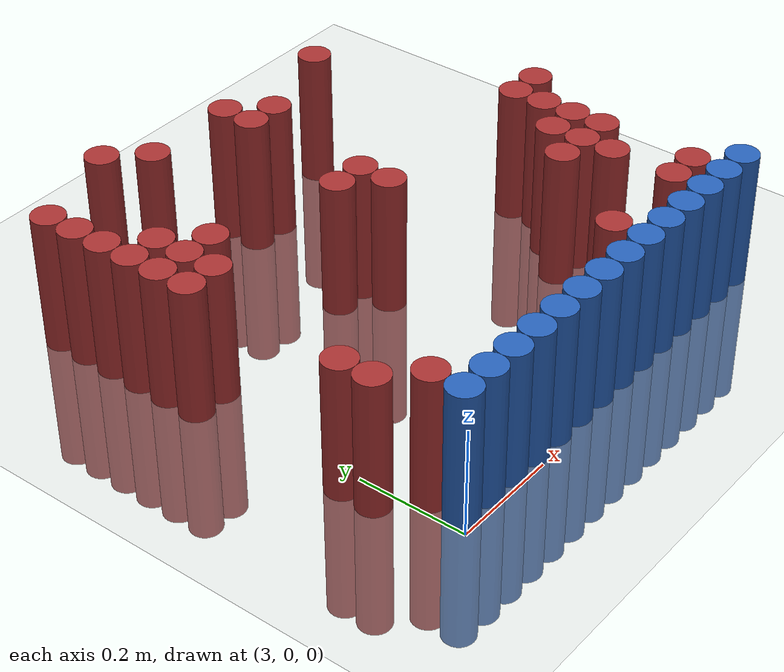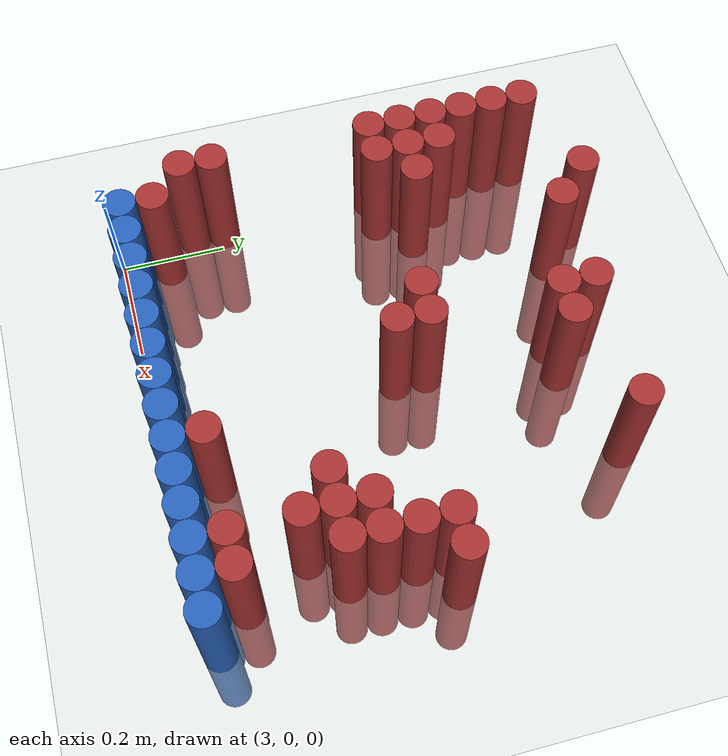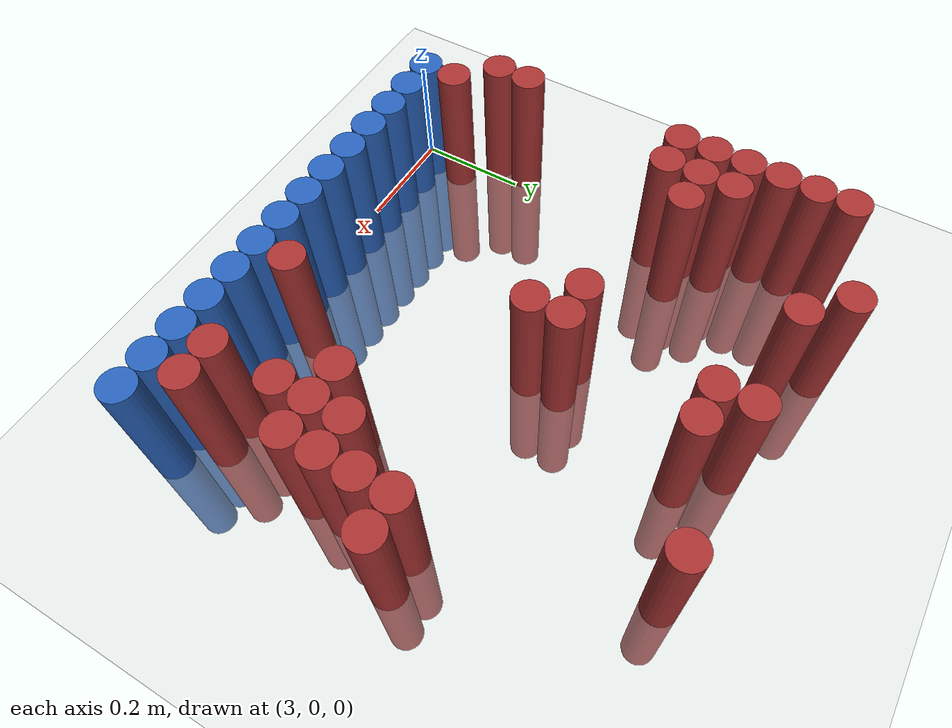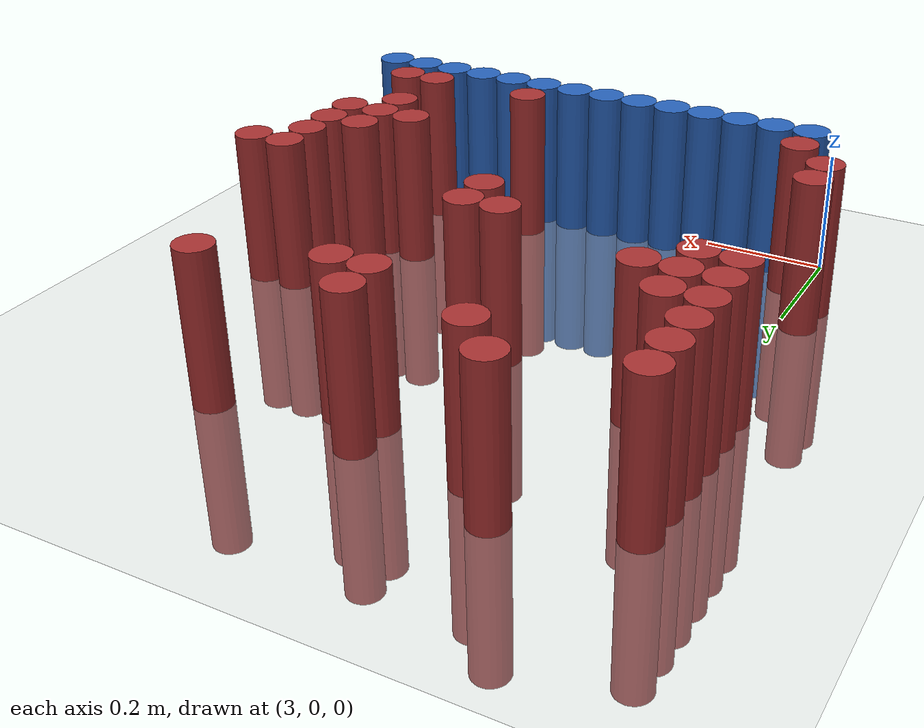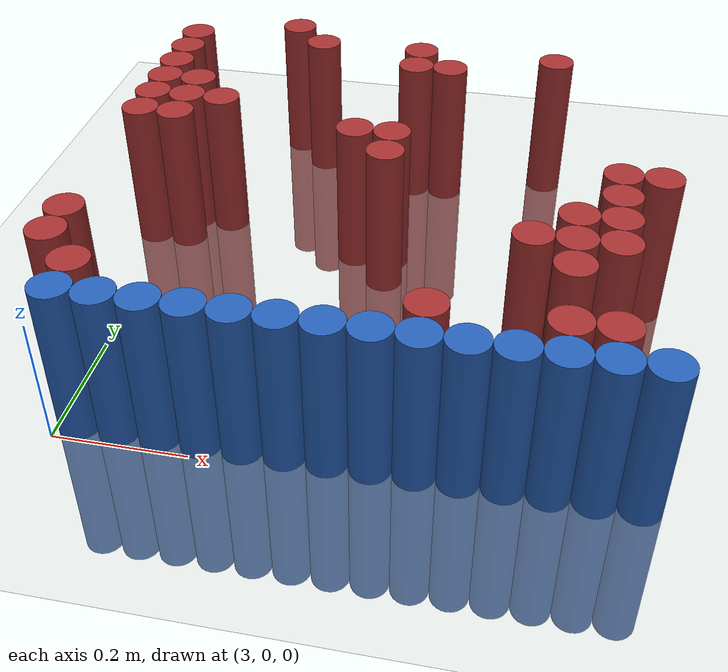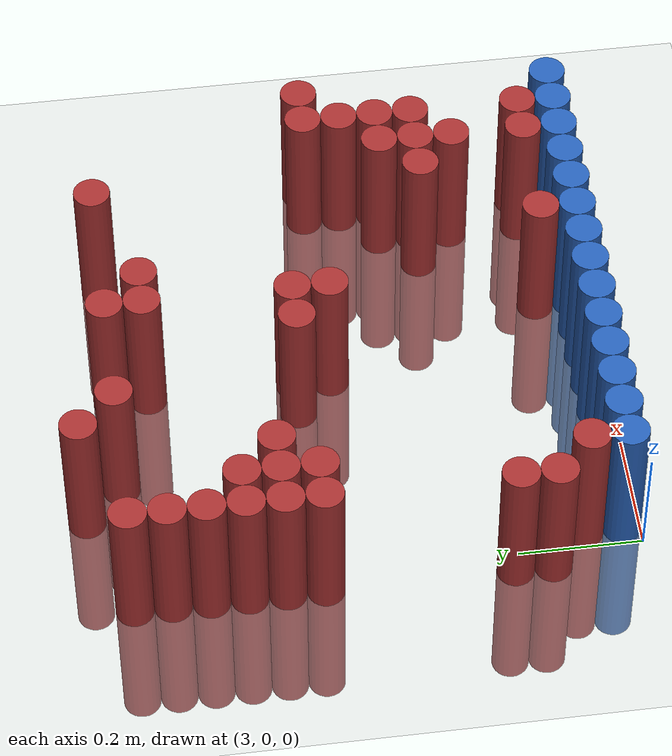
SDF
<sdf version="1.6">
 <world name="default">
  <model name="ground_plane">
   <static>1</static>
   <link name="link">
    <collision name="collision">
     <geometry><plane><normal>0 0 1</normal><size>100 100</size></plane></geometry>
     <surface><friction><ode><mu>100</mu><mu2>50</mu2></ode></friction></surface>
    </collision>
    <visual name="visual">
     <cast_shadows>0</cast_shadows>
     <geometry><plane><normal>0 0 1</normal><size>100 100</size></plane></geometry>
     <material>
      <script><uri>file://media/materials/scripts/gazebo.material</uri><name>Gazebo/Grey</name></script>
     </material>
    </visual>
   </link>
  </model>
  <model name="unit_cylinder_221">
   <static>1</static>
   <pose>3.150000 0.870000 0.000000 0.000000 0.000000 0.000000</pose>
   <link name="link">
    <inertial>
     <mass>1</mass>
     <inertia><ixx>0.145833</ixx><ixy>0</ixy><ixz>0</ixz><iyy>0.145833</iyy><iyz>0</iyz><izz>0.125</izz></inertia>
    </inertial>
    <collision name="collision">
     <geometry><cylinder><radius>0.030000</radius><length>0.5</length></cylinder></geometry>
    </collision>
    <visual name="visual">
     <geometry><cylinder><radius>0.030000</radius><length>0.5</length></cylinder></geometry>
     <material>
      <ambient>0.648000 0.192000 0.192000 1</ambient>
      <diffuse>0.648000 0.192000 0.192000 1</diffuse>
     </material>
     <material>
      <script><name>Gazebo/Grey</name><uri>file://media/materials/scripts/gazebo.material</uri></script>
     </material>
    </visual>
   </link>
  </model>
  <model name="unit_cylinder_235">
   <static>1</static>
   <pose>2.970000 0.810000 0.000000 0.000000 0.000000 0.000000</pose>
   <link name="link">
    <inertial>
     <mass>1</mass>
     <inertia><ixx>0.145833</ixx><ixy>0</ixy><ixz>0</ixz><iyy>0.145833</iyy><iyz>0</iyz><izz>0.125</izz></inertia>
    </inertial>
    <collision name="collision">
     <geometry><cylinder><radius>0.030000</radius><length>0.5</length></cylinder></geometry>
    </collision>
    <visual name="visual">
     <geometry><cylinder><radius>0.030000</radius><length>0.5</length></cylinder></geometry>
     <material>
      <ambient>0.648000 0.192000 0.192000 1</ambient>
      <diffuse>0.648000 0.192000 0.192000 1</diffuse>
     </material>
     <material>
      <script><name>Gazebo/Grey</name><uri>file://media/materials/scripts/gazebo.material</uri></script>
     </material>
    </visual>
   </link>
  </model>
  <model name="unit_cylinder_236">
   <static>1</static>
   <pose>3.210000 0.810000 0.000000 0.000000 0.000000 0.000000</pose>
   <link name="link">
    <inertial>
     <mass>1</mass>
     <inertia><ixx>0.145833</ixx><ixy>0</ixy><ixz>0</ixz><iyy>0.145833</iyy><iyz>0</iyz><izz>0.125</izz></inertia>
    </inertial>
    <collision name="collision">
     <geometry><cylinder><radius>0.030000</radius><length>0.5</length></cylinder></geometry>
    </collision>
    <visual name="visual">
     <geometry><cylinder><radius>0.030000</radius><length>0.5</length></cylinder></geometry>
     <material>
      <ambient>0.648000 0.192000 0.192000 1</ambient>
      <diffuse>0.648000 0.192000 0.192000 1</diffuse>
     </material>
     <material>
      <script><name>Gazebo/Grey</name><uri>file://media/materials/scripts/gazebo.material</uri></script>
     </material>
    </visual>
   </link>
  </model>
  <model name="unit_cylinder_237">
   <static>1</static>
   <pose>3.390000 0.810000 0.000000 0.000000 0.000000 0.000000</pose>
   <link name="link">
    <inertial>
     <mass>1</mass>
     <inertia><ixx>0.145833</ixx><ixy>0</ixy><ixz>0</ixz><iyy>0.145833</iyy><iyz>0</iyz><izz>0.125</izz></inertia>
    </inertial>
    <collision name="collision">
     <geometry><cylinder><radius>0.030000</radius><length>0.5</length></cylinder></geometry>
    </collision>
    <visual name="visual">
     <geometry><cylinder><radius>0.030000</radius><length>0.5</length></cylinder></geometry>
     <material>
      <ambient>0.648000 0.192000 0.192000 1</ambient>
      <diffuse>0.648000 0.192000 0.192000 1</diffuse>
     </material>
     <material>
      <script><name>Gazebo/Grey</name><uri>file://media/materials/scripts/gazebo.material</uri></script>
     </material>
    </visual>
   </link>
  </model>
  <model name="unit_cylinder_238">
   <static>1</static>
   <pose>3.630000 0.810000 0.000000 0.000000 0.000000 0.000000</pose>
   <link name="link">
    <inertial>
     <mass>1</mass>
     <inertia><ixx>0.145833</ixx><ixy>0</ixy><ixz>0</ixz><iyy>0.145833</iyy><iyz>0</iyz><izz>0.125</izz></inertia>
    </inertial>
    <collision name="collision">
     <geometry><cylinder><radius>0.030000</radius><length>0.5</length></cylinder></geometry>
    </collision>
    <visual name="visual">
     <geometry><cylinder><radius>0.030000</radius><length>0.5</length></cylinder></geometry>
     <material>
      <ambient>0.648000 0.192000 0.192000 1</ambient>
      <diffuse>0.648000 0.192000 0.192000 1</diffuse>
     </material>
     <material>
      <script><name>Gazebo/Grey</name><uri>file://media/materials/scripts/gazebo.material</uri></script>
     </material>
    </visual>
   </link>
  </model>
  <model name="unit_cylinder_241">
   <static>1</static>
   <pose>2.970000 0.750000 0.000000 0.000000 0.000000 0.000000</pose>
   <link name="link">
    <inertial>
     <mass>1</mass>
     <inertia><ixx>0.145833</ixx><ixy>0</ixy><ixz>0</ixz><iyy>0.145833</iyy><iyz>0</iyz><izz>0.125</izz></inertia>
    </inertial>
    <collision name="collision">
     <geometry><cylinder><radius>0.030000</radius><length>0.5</length></cylinder></geometry>
    </collision>
    <visual name="visual">
     <geometry><cylinder><radius>0.030000</radius><length>0.5</length></cylinder></geometry>
     <material>
      <ambient>0.648000 0.192000 0.192000 1</ambient>
      <diffuse>0.648000 0.192000 0.192000 1</diffuse>
     </material>
     <material>
      <script><name>Gazebo/Grey</name><uri>file://media/materials/scripts/gazebo.material</uri></script>
     </material>
    </visual>
   </link>
  </model>
  <model name="unit_cylinder_242">
   <static>1</static>
   <pose>3.390000 0.750000 0.000000 0.000000 0.000000 0.000000</pose>
   <link name="link">
    <inertial>
     <mass>1</mass>
     <inertia><ixx>0.145833</ixx><ixy>0</ixy><ixz>0</ixz><iyy>0.145833</iyy><iyz>0</iyz><izz>0.125</izz></inertia>
    </inertial>
    <collision name="collision">
     <geometry><cylinder><radius>0.030000</radius><length>0.5</length></cylinder></geometry>
    </collision>
    <visual name="visual">
     <geometry><cylinder><radius>0.030000</radius><length>0.5</length></cylinder></geometry>
     <material>
      <ambient>0.648000 0.192000 0.192000 1</ambient>
      <diffuse>0.648000 0.192000 0.192000 1</diffuse>
     </material>
     <material>
      <script><name>Gazebo/Grey</name><uri>file://media/materials/scripts/gazebo.material</uri></script>
     </material>
    </visual>
   </link>
  </model>
  <model name="unit_cylinder_243">
   <static>1</static>
   <pose>3.450000 0.750000 0.000000 0.000000 0.000000 0.000000</pose>
   <link name="link">
    <inertial>
     <mass>1</mass>
     <inertia><ixx>0.145833</ixx><ixy>0</ixy><ixz>0</ixz><iyy>0.145833</iyy><iyz>0</iyz><izz>0.125</izz></inertia>
    </inertial>
    <collision name="collision">
     <geometry><cylinder><radius>0.030000</radius><length>0.5</length></cylinder></geometry>
    </collision>
    <visual name="visual">
     <geometry><cylinder><radius>0.030000</radius><length>0.5</length></cylinder></geometry>
     <material>
      <ambient>0.648000 0.192000 0.192000 1</ambient>
      <diffuse>0.648000 0.192000 0.192000 1</diffuse>
     </material>
     <material>
      <script><name>Gazebo/Grey</name><uri>file://media/materials/scripts/gazebo.material</uri></script>
     </material>
    </visual>
   </link>
  </model>
  <model name="unit_cylinder_245">
   <static>1</static>
   <pose>2.970000 0.690000 0.000000 0.000000 0.000000 0.000000</pose>
   <link name="link">
    <inertial>
     <mass>1</mass>
     <inertia><ixx>0.145833</ixx><ixy>0</ixy><ixz>0</ixz><iyy>0.145833</iyy><iyz>0</iyz><izz>0.125</izz></inertia>
    </inertial>
    <collision name="collision">
     <geometry><cylinder><radius>0.030000</radius><length>0.5</length></cylinder></geometry>
    </collision>
    <visual name="visual">
     <geometry><cylinder><radius>0.030000</radius><length>0.5</length></cylinder></geometry>
     <material>
      <ambient>0.648000 0.192000 0.192000 1</ambient>
      <diffuse>0.648000 0.192000 0.192000 1</diffuse>
     </material>
     <material>
      <script><name>Gazebo/Grey</name><uri>file://media/materials/scripts/gazebo.material</uri></script>
     </material>
    </visual>
   </link>
  </model>
  <model name="unit_cylinder_248">
   <static>1</static>
   <pose>2.970000 0.630000 0.000000 0.000000 0.000000 0.000000</pose>
   <link name="link">
    <inertial>
     <mass>1</mass>
     <inertia><ixx>0.145833</ixx><ixy>0</ixy><ixz>0</ixz><iyy>0.145833</iyy><iyz>0</iyz><izz>0.125</izz></inertia>
    </inertial>
    <collision name="collision">
     <geometry><cylinder><radius>0.030000</radius><length>0.5</length></cylinder></geometry>
    </collision>
    <visual name="visual">
     <geometry><cylinder><radius>0.030000</radius><length>0.5</length></cylinder></geometry>
     <material>
      <ambient>0.648000 0.192000 0.192000 1</ambient>
      <diffuse>0.648000 0.192000 0.192000 1</diffuse>
     </material>
     <material>
      <script><name>Gazebo/Grey</name><uri>file://media/materials/scripts/gazebo.material</uri></script>
     </material>
    </visual>
   </link>
  </model>
  <model name="unit_cylinder_249">
   <static>1</static>
   <pose>3.030000 0.630000 0.000000 0.000000 0.000000 0.000000</pose>
   <link name="link">
    <inertial>
     <mass>1</mass>
     <inertia><ixx>0.145833</ixx><ixy>0</ixy><ixz>0</ixz><iyy>0.145833</iyy><iyz>0</iyz><izz>0.125</izz></inertia>
    </inertial>
    <collision name="collision">
     <geometry><cylinder><radius>0.030000</radius><length>0.5</length></cylinder></geometry>
    </collision>
    <visual name="visual">
     <geometry><cylinder><radius>0.030000</radius><length>0.5</length></cylinder></geometry>
     <material>
      <ambient>0.648000 0.192000 0.192000 1</ambient>
      <diffuse>0.648000 0.192000 0.192000 1</diffuse>
     </material>
     <material>
      <script><name>Gazebo/Grey</name><uri>file://media/materials/scripts/gazebo.material</uri></script>
     </material>
    </visual>
   </link>
  </model>
  <model name="unit_cylinder_256">
   <static>1</static>
   <pose>2.970000 0.570000 0.000000 0.000000 0.000000 0.000000</pose>
   <link name="link">
    <inertial>
     <mass>1</mass>
     <inertia><ixx>0.145833</ixx><ixy>0</ixy><ixz>0</ixz><iyy>0.145833</iyy><iyz>0</iyz><izz>0.125</izz></inertia>
    </inertial>
    <collision name="collision">
     <geometry><cylinder><radius>0.030000</radius><length>0.5</length></cylinder></geometry>
    </collision>
    <visual name="visual">
     <geometry><cylinder><radius>0.030000</radius><length>0.5</length></cylinder></geometry>
     <material>
      <ambient>0.648000 0.192000 0.192000 1</ambient>
      <diffuse>0.648000 0.192000 0.192000 1</diffuse>
     </material>
     <material>
      <script><name>Gazebo/Grey</name><uri>file://media/materials/scripts/gazebo.material</uri></script>
     </material>
    </visual>
   </link>
  </model>
  <model name="unit_cylinder_257">
   <static>1</static>
   <pose>3.030000 0.570000 0.000000 0.000000 0.000000 0.000000</pose>
   <link name="link">
    <inertial>
     <mass>1</mass>
     <inertia><ixx>0.145833</ixx><ixy>0</ixy><ixz>0</ixz><iyy>0.145833</iyy><iyz>0</iyz><izz>0.125</izz></inertia>
    </inertial>
    <collision name="collision">
     <geometry><cylinder><radius>0.030000</radius><length>0.5</length></cylinder></geometry>
    </collision>
    <visual name="visual">
     <geometry><cylinder><radius>0.030000</radius><length>0.5</length></cylinder></geometry>
     <material>
      <ambient>0.648000 0.192000 0.192000 1</ambient>
      <diffuse>0.648000 0.192000 0.192000 1</diffuse>
     </material>
     <material>
      <script><name>Gazebo/Grey</name><uri>file://media/materials/scripts/gazebo.material</uri></script>
     </material>
    </visual>
   </link>
  </model>
  <model name="unit_cylinder_258">
   <static>1</static>
   <pose>3.090000 0.570000 0.000000 0.000000 0.000000 0.000000</pose>
   <link name="link">
    <inertial>
     <mass>1</mass>
     <inertia><ixx>0.145833</ixx><ixy>0</ixy><ixz>0</ixz><iyy>0.145833</iyy><iyz>0</iyz><izz>0.125</izz></inertia>
    </inertial>
    <collision name="collision">
     <geometry><cylinder><radius>0.030000</radius><length>0.5</length></cylinder></geometry>
    </collision>
    <visual name="visual">
     <geometry><cylinder><radius>0.030000</radius><length>0.5</length></cylinder></geometry>
     <material>
      <ambient>0.648000 0.192000 0.192000 1</ambient>
      <diffuse>0.648000 0.192000 0.192000 1</diffuse>
     </material>
     <material>
      <script><name>Gazebo/Grey</name><uri>file://media/materials/scripts/gazebo.material</uri></script>
     </material>
    </visual>
   </link>
  </model>
  <model name="unit_cylinder_262">
   <static>1</static>
   <pose>2.970000 0.510000 0.000000 0.000000 0.000000 0.000000</pose>
   <link name="link">
    <inertial>
     <mass>1</mass>
     <inertia><ixx>0.145833</ixx><ixy>0</ixy><ixz>0</ixz><iyy>0.145833</iyy><iyz>0</iyz><izz>0.125</izz></inertia>
    </inertial>
    <collision name="collision">
     <geometry><cylinder><radius>0.030000</radius><length>0.5</length></cylinder></geometry>
    </collision>
    <visual name="visual">
     <geometry><cylinder><radius>0.030000</radius><length>0.5</length></cylinder></geometry>
     <material>
      <ambient>0.648000 0.192000 0.192000 1</ambient>
      <diffuse>0.648000 0.192000 0.192000 1</diffuse>
     </material>
     <material>
      <script><name>Gazebo/Grey</name><uri>file://media/materials/scripts/gazebo.material</uri></script>
     </material>
    </visual>
   </link>
  </model>
  <model name="unit_cylinder_263">
   <static>1</static>
   <pose>3.030000 0.510000 0.000000 0.000000 0.000000 0.000000</pose>
   <link name="link">
    <inertial>
     <mass>1</mass>
     <inertia><ixx>0.145833</ixx><ixy>0</ixy><ixz>0</ixz><iyy>0.145833</iyy><iyz>0</iyz><izz>0.125</izz></inertia>
    </inertial>
    <collision name="collision">
     <geometry><cylinder><radius>0.030000</radius><length>0.5</length></cylinder></geometry>
    </collision>
    <visual name="visual">
     <geometry><cylinder><radius>0.030000</radius><length>0.5</length></cylinder></geometry>
     <material>
      <ambient>0.648000 0.192000 0.192000 1</ambient>
      <diffuse>0.648000 0.192000 0.192000 1</diffuse>
     </material>
     <material>
      <script><name>Gazebo/Grey</name><uri>file://media/materials/scripts/gazebo.material</uri></script>
     </material>
    </visual>
   </link>
  </model>
  <model name="unit_cylinder_264">
   <static>1</static>
   <pose>3.330000 0.510000 0.000000 0.000000 0.000000 0.000000</pose>
   <link name="link">
    <inertial>
     <mass>1</mass>
     <inertia><ixx>0.145833</ixx><ixy>0</ixy><ixz>0</ixz><iyy>0.145833</iyy><iyz>0</iyz><izz>0.125</izz></inertia>
    </inertial>
    <collision name="collision">
     <geometry><cylinder><radius>0.030000</radius><length>0.5</length></cylinder></geometry>
    </collision>
    <visual name="visual">
     <geometry><cylinder><radius>0.030000</radius><length>0.5</length></cylinder></geometry>
     <material>
      <ambient>0.648000 0.192000 0.192000 1</ambient>
      <diffuse>0.648000 0.192000 0.192000 1</diffuse>
     </material>
     <material>
      <script><name>Gazebo/Grey</name><uri>file://media/materials/scripts/gazebo.material</uri></script>
     </material>
    </visual>
   </link>
  </model>
  <model name="unit_cylinder_265">
   <static>1</static>
   <pose>3.390000 0.510000 0.000000 0.000000 0.000000 0.000000</pose>
   <link name="link">
    <inertial>
     <mass>1</mass>
     <inertia><ixx>0.145833</ixx><ixy>0</ixy><ixz>0</ixz><iyy>0.145833</iyy><iyz>0</iyz><izz>0.125</izz></inertia>
    </inertial>
    <collision name="collision">
     <geometry><cylinder><radius>0.030000</radius><length>0.5</length></cylinder></geometry>
    </collision>
    <visual name="visual">
     <geometry><cylinder><radius>0.030000</radius><length>0.5</length></cylinder></geometry>
     <material>
      <ambient>0.648000 0.192000 0.192000 1</ambient>
      <diffuse>0.648000 0.192000 0.192000 1</diffuse>
     </material>
     <material>
      <script><name>Gazebo/Grey</name><uri>file://media/materials/scripts/gazebo.material</uri></script>
     </material>
    </visual>
   </link>
  </model>
  <model name="unit_cylinder_267">
   <static>1</static>
   <pose>3.390000 0.450000 0.000000 0.000000 0.000000 0.000000</pose>
   <link name="link">
    <inertial>
     <mass>1</mass>
     <inertia><ixx>0.145833</ixx><ixy>0</ixy><ixz>0</ixz><iyy>0.145833</iyy><iyz>0</iyz><izz>0.125</izz></inertia>
    </inertial>
    <collision name="collision">
     <geometry><cylinder><radius>0.030000</radius><length>0.5</length></cylinder></geometry>
    </collision>
    <visual name="visual">
     <geometry><cylinder><radius>0.030000</radius><length>0.5</length></cylinder></geometry>
     <material>
      <ambient>0.648000 0.192000 0.192000 1</ambient>
      <diffuse>0.648000 0.192000 0.192000 1</diffuse>
     </material>
     <material>
      <script><name>Gazebo/Grey</name><uri>file://media/materials/scripts/gazebo.material</uri></script>
     </material>
    </visual>
   </link>
  </model>
  <model name="unit_cylinder_268">
   <static>1</static>
   <pose>3.750000 0.450000 0.000000 0.000000 0.000000 0.000000</pose>
   <link name="link">
    <inertial>
     <mass>1</mass>
     <inertia><ixx>0.145833</ixx><ixy>0</ixy><ixz>0</ixz><iyy>0.145833</iyy><iyz>0</iyz><izz>0.125</izz></inertia>
    </inertial>
    <collision name="collision">
     <geometry><cylinder><radius>0.030000</radius><length>0.5</length></cylinder></geometry>
    </collision>
    <visual name="visual">
     <geometry><cylinder><radius>0.030000</radius><length>0.5</length></cylinder></geometry>
     <material>
      <ambient>0.648000 0.192000 0.192000 1</ambient>
      <diffuse>0.648000 0.192000 0.192000 1</diffuse>
     </material>
     <material>
      <script><name>Gazebo/Grey</name><uri>file://media/materials/scripts/gazebo.material</uri></script>
     </material>
    </visual>
   </link>
  </model>
  <model name="unit_cylinder_269">
   <static>1</static>
   <pose>3.810000 0.450000 0.000000 0.000000 0.000000 0.000000</pose>
   <link name="link">
    <inertial>
     <mass>1</mass>
     <inertia><ixx>0.145833</ixx><ixy>0</ixy><ixz>0</ixz><iyy>0.145833</iyy><iyz>0</iyz><izz>0.125</izz></inertia>
    </inertial>
    <collision name="collision">
     <geometry><cylinder><radius>0.030000</radius><length>0.5</length></cylinder></geometry>
    </collision>
    <visual name="visual">
     <geometry><cylinder><radius>0.030000</radius><length>0.5</length></cylinder></geometry>
     <material>
      <ambient>0.648000 0.192000 0.192000 1</ambient>
      <diffuse>0.648000 0.192000 0.192000 1</diffuse>
     </material>
     <material>
      <script><name>Gazebo/Grey</name><uri>file://media/materials/scripts/gazebo.material</uri></script>
     </material>
    </visual>
   </link>
  </model>
  <model name="unit_cylinder_272">
   <static>1</static>
   <pose>3.750000 0.390000 0.000000 0.000000 0.000000 0.000000</pose>
   <link name="link">
    <inertial>
     <mass>1</mass>
     <inertia><ixx>0.145833</ixx><ixy>0</ixy><ixz>0</ixz><iyy>0.145833</iyy><iyz>0</iyz><izz>0.125</izz></inertia>
    </inertial>
    <collision name="collision">
     <geometry><cylinder><radius>0.030000</radius><length>0.5</length></cylinder></geometry>
    </collision>
    <visual name="visual">
     <geometry><cylinder><radius>0.030000</radius><length>0.5</length></cylinder></geometry>
     <material>
      <ambient>0.648000 0.192000 0.192000 1</ambient>
      <diffuse>0.648000 0.192000 0.192000 1</diffuse>
     </material>
     <material>
      <script><name>Gazebo/Grey</name><uri>file://media/materials/scripts/gazebo.material</uri></script>
     </material>
    </visual>
   </link>
  </model>
  <model name="unit_cylinder_275">
   <static>1</static>
   <pose>3.690000 0.330000 0.000000 0.000000 0.000000 0.000000</pose>
   <link name="link">
    <inertial>
     <mass>1</mass>
     <inertia><ixx>0.145833</ixx><ixy>0</ixy><ixz>0</ixz><iyy>0.145833</iyy><iyz>0</iyz><izz>0.125</izz></inertia>
    </inertial>
    <collision name="collision">
     <geometry><cylinder><radius>0.030000</radius><length>0.5</length></cylinder></geometry>
    </collision>
    <visual name="visual">
     <geometry><cylinder><radius>0.030000</radius><length>0.5</length></cylinder></geometry>
     <material>
      <ambient>0.648000 0.192000 0.192000 1</ambient>
      <diffuse>0.648000 0.192000 0.192000 1</diffuse>
     </material>
     <material>
      <script><name>Gazebo/Grey</name><uri>file://media/materials/scripts/gazebo.material</uri></script>
     </material>
    </visual>
   </link>
  </model>
  <model name="unit_cylinder_276">
   <static>1</static>
   <pose>3.750000 0.330000 0.000000 0.000000 0.000000 0.000000</pose>
   <link name="link">
    <inertial>
     <mass>1</mass>
     <inertia><ixx>0.145833</ixx><ixy>0</ixy><ixz>0</ixz><iyy>0.145833</iyy><iyz>0</iyz><izz>0.125</izz></inertia>
    </inertial>
    <collision name="collision">
     <geometry><cylinder><radius>0.030000</radius><length>0.5</length></cylinder></geometry>
    </collision>
    <visual name="visual">
     <geometry><cylinder><radius>0.030000</radius><length>0.5</length></cylinder></geometry>
     <material>
      <ambient>0.648000 0.192000 0.192000 1</ambient>
      <diffuse>0.648000 0.192000 0.192000 1</diffuse>
     </material>
     <material>
      <script><name>Gazebo/Grey</name><uri>file://media/materials/scripts/gazebo.material</uri></script>
     </material>
    </visual>
   </link>
  </model>
  <model name="unit_cylinder_278">
   <static>1</static>
   <pose>3.630000 0.270000 0.000000 0.000000 0.000000 0.000000</pose>
   <link name="link">
    <inertial>
     <mass>1</mass>
     <inertia><ixx>0.145833</ixx><ixy>0</ixy><ixz>0</ixz><iyy>0.145833</iyy><iyz>0</iyz><izz>0.125</izz></inertia>
    </inertial>
    <collision name="collision">
     <geometry><cylinder><radius>0.030000</radius><length>0.5</length></cylinder></geometry>
    </collision>
    <visual name="visual">
     <geometry><cylinder><radius>0.030000</radius><length>0.5</length></cylinder></geometry>
     <material>
      <ambient>0.648000 0.192000 0.192000 1</ambient>
      <diffuse>0.648000 0.192000 0.192000 1</diffuse>
     </material>
     <material>
      <script><name>Gazebo/Grey</name><uri>file://media/materials/scripts/gazebo.material</uri></script>
     </material>
    </visual>
   </link>
  </model>
  <model name="unit_cylinder_279">
   <static>1</static>
   <pose>3.690000 0.270000 0.000000 0.000000 0.000000 0.000000</pose>
   <link name="link">
    <inertial>
     <mass>1</mass>
     <inertia><ixx>0.145833</ixx><ixy>0</ixy><ixz>0</ixz><iyy>0.145833</iyy><iyz>0</iyz><izz>0.125</izz></inertia>
    </inertial>
    <collision name="collision">
     <geometry><cylinder><radius>0.030000</radius><length>0.5</length></cylinder></geometry>
    </collision>
    <visual name="visual">
     <geometry><cylinder><radius>0.030000</radius><length>0.5</length></cylinder></geometry>
     <material>
      <ambient>0.648000 0.192000 0.192000 1</ambient>
      <diffuse>0.648000 0.192000 0.192000 1</diffuse>
     </material>
     <material>
      <script><name>Gazebo/Grey</name><uri>file://media/materials/scripts/gazebo.material</uri></script>
     </material>
    </visual>
   </link>
  </model>
  <model name="unit_cylinder_280">
   <static>1</static>
   <pose>3.750000 0.270000 0.000000 0.000000 0.000000 0.000000</pose>
   <link name="link">
    <inertial>
     <mass>1</mass>
     <inertia><ixx>0.145833</ixx><ixy>0</ixy><ixz>0</ixz><iyy>0.145833</iyy><iyz>0</iyz><izz>0.125</izz></inertia>
    </inertial>
    <collision name="collision">
     <geometry><cylinder><radius>0.030000</radius><length>0.5</length></cylinder></geometry>
    </collision>
    <visual name="visual">
     <geometry><cylinder><radius>0.030000</radius><length>0.5</length></cylinder></geometry>
     <material>
      <ambient>0.648000 0.192000 0.192000 1</ambient>
      <diffuse>0.648000 0.192000 0.192000 1</diffuse>
     </material>
     <material>
      <script><name>Gazebo/Grey</name><uri>file://media/materials/scripts/gazebo.material</uri></script>
     </material>
    </visual>
   </link>
  </model>
  <model name="unit_cylinder_282">
   <static>1</static>
   <pose>2.970000 0.210000 0.000000 0.000000 0.000000 0.000000</pose>
   <link name="link">
    <inertial>
     <mass>1</mass>
     <inertia><ixx>0.145833</ixx><ixy>0</ixy><ixz>0</ixz><iyy>0.145833</iyy><iyz>0</iyz><izz>0.125</izz></inertia>
    </inertial>
    <collision name="collision">
     <geometry><cylinder><radius>0.030000</radius><length>0.5</length></cylinder></geometry>
    </collision>
    <visual name="visual">
     <geometry><cylinder><radius>0.030000</radius><length>0.5</length></cylinder></geometry>
     <material>
      <ambient>0.648000 0.192000 0.192000 1</ambient>
      <diffuse>0.648000 0.192000 0.192000 1</diffuse>
     </material>
     <material>
      <script><name>Gazebo/Grey</name><uri>file://media/materials/scripts/gazebo.material</uri></script>
     </material>
    </visual>
   </link>
  </model>
  <model name="unit_cylinder_283">
   <static>1</static>
   <pose>3.690000 0.210000 0.000000 0.000000 0.000000 0.000000</pose>
   <link name="link">
    <inertial>
     <mass>1</mass>
     <inertia><ixx>0.145833</ixx><ixy>0</ixy><ixz>0</ixz><iyy>0.145833</iyy><iyz>0</iyz><izz>0.125</izz></inertia>
    </inertial>
    <collision name="collision">
     <geometry><cylinder><radius>0.030000</radius><length>0.5</length></cylinder></geometry>
    </collision>
    <visual name="visual">
     <geometry><cylinder><radius>0.030000</radius><length>0.5</length></cylinder></geometry>
     <material>
      <ambient>0.648000 0.192000 0.192000 1</ambient>
      <diffuse>0.648000 0.192000 0.192000 1</diffuse>
     </material>
     <material>
      <script><name>Gazebo/Grey</name><uri>file://media/materials/scripts/gazebo.material</uri></script>
     </material>
    </visual>
   </link>
  </model>
  <model name="unit_cylinder_286">
   <static>1</static>
   <pose>2.970000 0.150000 0.000000 0.000000 0.000000 0.000000</pose>
   <link name="link">
    <inertial>
     <mass>1</mass>
     <inertia><ixx>0.145833</ixx><ixy>0</ixy><ixz>0</ixz><iyy>0.145833</iyy><iyz>0</iyz><izz>0.125</izz></inertia>
    </inertial>
    <collision name="collision">
     <geometry><cylinder><radius>0.030000</radius><length>0.5</length></cylinder></geometry>
    </collision>
    <visual name="visual">
     <geometry><cylinder><radius>0.030000</radius><length>0.5</length></cylinder></geometry>
     <material>
      <ambient>0.648000 0.192000 0.192000 1</ambient>
      <diffuse>0.648000 0.192000 0.192000 1</diffuse>
     </material>
     <material>
      <script><name>Gazebo/Grey</name><uri>file://media/materials/scripts/gazebo.material</uri></script>
     </material>
    </visual>
   </link>
  </model>
  <model name="unit_cylinder_299">
   <static>1</static>
   <pose>3.030000 0.090000 0.000000 0.000000 0.000000 0.000000</pose>
   <link name="link">
    <inertial>
     <mass>1</mass>
     <inertia><ixx>0.145833</ixx><ixy>0</ixy><ixz>0</ixz><iyy>0.145833</iyy><iyz>0</iyz><izz>0.125</izz></inertia>
    </inertial>
    <collision name="collision">
     <geometry><cylinder><radius>0.030000</radius><length>0.5</length></cylinder></geometry>
    </collision>
    <visual name="visual">
     <geometry><cylinder><radius>0.030000</radius><length>0.5</length></cylinder></geometry>
     <material>
      <ambient>0.648000 0.192000 0.192000 1</ambient>
      <diffuse>0.648000 0.192000 0.192000 1</diffuse>
     </material>
     <material>
      <script><name>Gazebo/Grey</name><uri>file://media/materials/scripts/gazebo.material</uri></script>
     </material>
    </visual>
   </link>
  </model>
  <model name="unit_cylinder_300">
   <static>1</static>
   <pose>3.510000 0.090000 0.000000 0.000000 0.000000 0.000000</pose>
   <link name="link">
    <inertial>
     <mass>1</mass>
     <inertia><ixx>0.145833</ixx><ixy>0</ixy><ixz>0</ixz><iyy>0.145833</iyy><iyz>0</iyz><izz>0.125</izz></inertia>
    </inertial>
    <collision name="collision">
     <geometry><cylinder><radius>0.030000</radius><length>0.5</length></cylinder></geometry>
    </collision>
    <visual name="visual">
     <geometry><cylinder><radius>0.030000</radius><length>0.5</length></cylinder></geometry>
     <material>
      <ambient>0.648000 0.192000 0.192000 1</ambient>
      <diffuse>0.648000 0.192000 0.192000 1</diffuse>
     </material>
     <material>
      <script><name>Gazebo/Grey</name><uri>file://media/materials/scripts/gazebo.material</uri></script>
     </material>
    </visual>
   </link>
  </model>
  <model name="unit_cylinder_301">
   <static>1</static>
   <pose>3.690000 0.090000 0.000000 0.000000 0.000000 0.000000</pose>
   <link name="link">
    <inertial>
     <mass>1</mass>
     <inertia><ixx>0.145833</ixx><ixy>0</ixy><ixz>0</ixz><iyy>0.145833</iyy><iyz>0</iyz><izz>0.125</izz></inertia>
    </inertial>
    <collision name="collision">
     <geometry><cylinder><radius>0.030000</radius><length>0.5</length></cylinder></geometry>
    </collision>
    <visual name="visual">
     <geometry><cylinder><radius>0.030000</radius><length>0.5</length></cylinder></geometry>
     <material>
      <ambient>0.648000 0.192000 0.192000 1</ambient>
      <diffuse>0.648000 0.192000 0.192000 1</diffuse>
     </material>
     <material>
      <script><name>Gazebo/Grey</name><uri>file://media/materials/scripts/gazebo.material</uri></script>
     </material>
    </visual>
   </link>
  </model>
  <model name="unit_cylinder_302">
   <static>1</static>
   <pose>3.750000 0.090000 0.000000 0.000000 0.000000 0.000000</pose>
   <link name="link">
    <inertial>
     <mass>1</mass>
     <inertia><ixx>0.145833</ixx><ixy>0</ixy><ixz>0</ixz><iyy>0.145833</iyy><iyz>0</iyz><izz>0.125</izz></inertia>
    </inertial>
    <collision name="collision">
     <geometry><cylinder><radius>0.030000</radius><length>0.5</length></cylinder></geometry>
    </collision>
    <visual name="visual">
     <geometry><cylinder><radius>0.030000</radius><length>0.5</length></cylinder></geometry>
     <material>
      <ambient>0.648000 0.192000 0.192000 1</ambient>
      <diffuse>0.648000 0.192000 0.192000 1</diffuse>
     </material>
     <material>
      <script><name>Gazebo/Grey</name><uri>file://media/materials/scripts/gazebo.material</uri></script>
     </material>
    </visual>
   </link>
  </model>
  <model name="unit_cylinder_319">
   <static>1</static>
   <pose>3.030000 0.030000 0.000000 0.000000 0.000000 0.000000</pose>
   <link name="link">
    <inertial>
     <mass>1</mass>
     <inertia><ixx>0.145833</ixx><ixy>0</ixy><ixz>0</ixz><iyy>0.145833</iyy><iyz>0</iyz><izz>0.125</izz></inertia>
    </inertial>
    <collision name="collision">
     <geometry><cylinder><radius>0.030000</radius><length>0.5</length></cylinder></geometry>
    </collision>
    <visual name="visual">
     <geometry><cylinder><radius>0.030000</radius><length>0.5</length></cylinder></geometry>
     <material>
      <ambient>0.152000 0.379000 0.720000 1</ambient>
      <diffuse>0.152000 0.379000 0.720000 1</diffuse>
     </material>
     <material>
      <script><name>Gazebo/Grey</name><uri>file://media/materials/scripts/gazebo.material</uri></script>
     </material>
    </visual>
   </link>
  </model>
  <model name="unit_cylinder_320">
   <static>1</static>
   <pose>3.090000 0.030000 0.000000 0.000000 0.000000 0.000000</pose>
   <link name="link">
    <inertial>
     <mass>1</mass>
     <inertia><ixx>0.145833</ixx><ixy>0</ixy><ixz>0</ixz><iyy>0.145833</iyy><iyz>0</iyz><izz>0.125</izz></inertia>
    </inertial>
    <collision name="collision">
     <geometry><cylinder><radius>0.030000</radius><length>0.5</length></cylinder></geometry>
    </collision>
    <visual name="visual">
     <geometry><cylinder><radius>0.030000</radius><length>0.5</length></cylinder></geometry>
     <material>
      <ambient>0.152000 0.379000 0.720000 1</ambient>
      <diffuse>0.152000 0.379000 0.720000 1</diffuse>
     </material>
     <material>
      <script><name>Gazebo/Grey</name><uri>file://media/materials/scripts/gazebo.material</uri></script>
     </material>
    </visual>
   </link>
  </model>
  <model name="unit_cylinder_321">
   <static>1</static>
   <pose>3.150000 0.030000 0.000000 0.000000 0.000000 0.000000</pose>
   <link name="link">
    <inertial>
     <mass>1</mass>
     <inertia><ixx>0.145833</ixx><ixy>0</ixy><ixz>0</ixz><iyy>0.145833</iyy><iyz>0</iyz><izz>0.125</izz></inertia>
    </inertial>
    <collision name="collision">
     <geometry><cylinder><radius>0.030000</radius><length>0.5</length></cylinder></geometry>
    </collision>
    <visual name="visual">
     <geometry><cylinder><radius>0.030000</radius><length>0.5</length></cylinder></geometry>
     <material>
      <ambient>0.152000 0.379000 0.720000 1</ambient>
      <diffuse>0.152000 0.379000 0.720000 1</diffuse>
     </material>
     <material>
      <script><name>Gazebo/Grey</name><uri>file://media/materials/scripts/gazebo.material</uri></script>
     </material>
    </visual>
   </link>
  </model>
  <model name="unit_cylinder_322">
   <static>1</static>
   <pose>3.210000 0.030000 0.000000 0.000000 0.000000 0.000000</pose>
   <link name="link">
    <inertial>
     <mass>1</mass>
     <inertia><ixx>0.145833</ixx><ixy>0</ixy><ixz>0</ixz><iyy>0.145833</iyy><iyz>0</iyz><izz>0.125</izz></inertia>
    </inertial>
    <collision name="collision">
     <geometry><cylinder><radius>0.030000</radius><length>0.5</length></cylinder></geometry>
    </collision>
    <visual name="visual">
     <geometry><cylinder><radius>0.030000</radius><length>0.5</length></cylinder></geometry>
     <material>
      <ambient>0.152000 0.379000 0.720000 1</ambient>
      <diffuse>0.152000 0.379000 0.720000 1</diffuse>
     </material>
     <material>
      <script><name>Gazebo/Grey</name><uri>file://media/materials/scripts/gazebo.material</uri></script>
     </material>
    </visual>
   </link>
  </model>
  <model name="unit_cylinder_323">
   <static>1</static>
   <pose>3.270000 0.030000 0.000000 0.000000 0.000000 0.000000</pose>
   <link name="link">
    <inertial>
     <mass>1</mass>
     <inertia><ixx>0.145833</ixx><ixy>0</ixy><ixz>0</ixz><iyy>0.145833</iyy><iyz>0</iyz><izz>0.125</izz></inertia>
    </inertial>
    <collision name="collision">
     <geometry><cylinder><radius>0.030000</radius><length>0.5</length></cylinder></geometry>
    </collision>
    <visual name="visual">
     <geometry><cylinder><radius>0.030000</radius><length>0.5</length></cylinder></geometry>
     <material>
      <ambient>0.152000 0.379000 0.720000 1</ambient>
      <diffuse>0.152000 0.379000 0.720000 1</diffuse>
     </material>
     <material>
      <script><name>Gazebo/Grey</name><uri>file://media/materials/scripts/gazebo.material</uri></script>
     </material>
    </visual>
   </link>
  </model>
  <model name="unit_cylinder_324">
   <static>1</static>
   <pose>3.330000 0.030000 0.000000 0.000000 0.000000 0.000000</pose>
   <link name="link">
    <inertial>
     <mass>1</mass>
     <inertia><ixx>0.145833</ixx><ixy>0</ixy><ixz>0</ixz><iyy>0.145833</iyy><iyz>0</iyz><izz>0.125</izz></inertia>
    </inertial>
    <collision name="collision">
     <geometry><cylinder><radius>0.030000</radius><length>0.5</length></cylinder></geometry>
    </collision>
    <visual name="visual">
     <geometry><cylinder><radius>0.030000</radius><length>0.5</length></cylinder></geometry>
     <material>
      <ambient>0.152000 0.379000 0.720000 1</ambient>
      <diffuse>0.152000 0.379000 0.720000 1</diffuse>
     </material>
     <material>
      <script><name>Gazebo/Grey</name><uri>file://media/materials/scripts/gazebo.material</uri></script>
     </material>
    </visual>
   </link>
  </model>
  <model name="unit_cylinder_325">
   <static>1</static>
   <pose>3.390000 0.030000 0.000000 0.000000 0.000000 0.000000</pose>
   <link name="link">
    <inertial>
     <mass>1</mass>
     <inertia><ixx>0.145833</ixx><ixy>0</ixy><ixz>0</ixz><iyy>0.145833</iyy><iyz>0</iyz><izz>0.125</izz></inertia>
    </inertial>
    <collision name="collision">
     <geometry><cylinder><radius>0.030000</radius><length>0.5</length></cylinder></geometry>
    </collision>
    <visual name="visual">
     <geometry><cylinder><radius>0.030000</radius><length>0.5</length></cylinder></geometry>
     <material>
      <ambient>0.152000 0.379000 0.720000 1</ambient>
      <diffuse>0.152000 0.379000 0.720000 1</diffuse>
     </material>
     <material>
      <script><name>Gazebo/Grey</name><uri>file://media/materials/scripts/gazebo.material</uri></script>
     </material>
    </visual>
   </link>
  </model>
  <model name="unit_cylinder_326">
   <static>1</static>
   <pose>3.450000 0.030000 0.000000 0.000000 0.000000 0.000000</pose>
   <link name="link">
    <inertial>
     <mass>1</mass>
     <inertia><ixx>0.145833</ixx><ixy>0</ixy><ixz>0</ixz><iyy>0.145833</iyy><iyz>0</iyz><izz>0.125</izz></inertia>
    </inertial>
    <collision name="collision">
     <geometry><cylinder><radius>0.030000</radius><length>0.5</length></cylinder></geometry>
    </collision>
    <visual name="visual">
     <geometry><cylinder><radius>0.030000</radius><length>0.5</length></cylinder></geometry>
     <material>
      <ambient>0.152000 0.379000 0.720000 1</ambient>
      <diffuse>0.152000 0.379000 0.720000 1</diffuse>
     </material>
     <material>
      <script><name>Gazebo/Grey</name><uri>file://media/materials/scripts/gazebo.material</uri></script>
     </material>
    </visual>
   </link>
  </model>
  <model name="unit_cylinder_327">
   <static>1</static>
   <pose>3.510000 0.030000 0.000000 0.000000 0.000000 0.000000</pose>
   <link name="link">
    <inertial>
     <mass>1</mass>
     <inertia><ixx>0.145833</ixx><ixy>0</ixy><ixz>0</ixz><iyy>0.145833</iyy><iyz>0</iyz><izz>0.125</izz></inertia>
    </inertial>
    <collision name="collision">
     <geometry><cylinder><radius>0.030000</radius><length>0.5</length></cylinder></geometry>
    </collision>
    <visual name="visual">
     <geometry><cylinder><radius>0.030000</radius><length>0.5</length></cylinder></geometry>
     <material>
      <ambient>0.152000 0.379000 0.720000 1</ambient>
      <diffuse>0.152000 0.379000 0.720000 1</diffuse>
     </material>
     <material>
      <script><name>Gazebo/Grey</name><uri>file://media/materials/scripts/gazebo.material</uri></script>
     </material>
    </visual>
   </link>
  </model>
  <model name="unit_cylinder_328">
   <static>1</static>
   <pose>3.570000 0.030000 0.000000 0.000000 0.000000 0.000000</pose>
   <link name="link">
    <inertial>
     <mass>1</mass>
     <inertia><ixx>0.145833</ixx><ixy>0</ixy><ixz>0</ixz><iyy>0.145833</iyy><iyz>0</iyz><izz>0.125</izz></inertia>
    </inertial>
    <collision name="collision">
     <geometry><cylinder><radius>0.030000</radius><length>0.5</length></cylinder></geometry>
    </collision>
    <visual name="visual">
     <geometry><cylinder><radius>0.030000</radius><length>0.5</length></cylinder></geometry>
     <material>
      <ambient>0.152000 0.379000 0.720000 1</ambient>
      <diffuse>0.152000 0.379000 0.720000 1</diffuse>
     </material>
     <material>
      <script><name>Gazebo/Grey</name><uri>file://media/materials/scripts/gazebo.material</uri></script>
     </material>
    </visual>
   </link>
  </model>
  <model name="unit_cylinder_329">
   <static>1</static>
   <pose>3.630000 0.030000 0.000000 0.000000 0.000000 0.000000</pose>
   <link name="link">
    <inertial>
     <mass>1</mass>
     <inertia><ixx>0.145833</ixx><ixy>0</ixy><ixz>0</ixz><iyy>0.145833</iyy><iyz>0</iyz><izz>0.125</izz></inertia>
    </inertial>
    <collision name="collision">
     <geometry><cylinder><radius>0.030000</radius><length>0.5</length></cylinder></geometry>
    </collision>
    <visual name="visual">
     <geometry><cylinder><radius>0.030000</radius><length>0.5</length></cylinder></geometry>
     <material>
      <ambient>0.152000 0.379000 0.720000 1</ambient>
      <diffuse>0.152000 0.379000 0.720000 1</diffuse>
     </material>
     <material>
      <script><name>Gazebo/Grey</name><uri>file://media/materials/scripts/gazebo.material</uri></script>
     </material>
    </visual>
   </link>
  </model>
  <model name="unit_cylinder_330">
   <static>1</static>
   <pose>3.690000 0.030000 0.000000 0.000000 0.000000 0.000000</pose>
   <link name="link">
    <inertial>
     <mass>1</mass>
     <inertia><ixx>0.145833</ixx><ixy>0</ixy><ixz>0</ixz><iyy>0.145833</iyy><iyz>0</iyz><izz>0.125</izz></inertia>
    </inertial>
    <collision name="collision">
     <geometry><cylinder><radius>0.030000</radius><length>0.5</length></cylinder></geometry>
    </collision>
    <visual name="visual">
     <geometry><cylinder><radius>0.030000</radius><length>0.5</length></cylinder></geometry>
     <material>
      <ambient>0.152000 0.379000 0.720000 1</ambient>
      <diffuse>0.152000 0.379000 0.720000 1</diffuse>
     </material>
     <material>
      <script><name>Gazebo/Grey</name><uri>file://media/materials/scripts/gazebo.material</uri></script>
     </material>
    </visual>
   </link>
  </model>
  <model name="unit_cylinder_331">
   <static>1</static>
   <pose>3.750000 0.030000 0.000000 0.000000 0.000000 0.000000</pose>
   <link name="link">
    <inertial>
     <mass>1</mass>
     <inertia><ixx>0.145833</ixx><ixy>0</ixy><ixz>0</ixz><iyy>0.145833</iyy><iyz>0</iyz><izz>0.125</izz></inertia>
    </inertial>
    <collision name="collision">
     <geometry><cylinder><radius>0.030000</radius><length>0.5</length></cylinder></geometry>
    </collision>
    <visual name="visual">
     <geometry><cylinder><radius>0.030000</radius><length>0.5</length></cylinder></geometry>
     <material>
      <ambient>0.152000 0.379000 0.720000 1</ambient>
      <diffuse>0.152000 0.379000 0.720000 1</diffuse>
     </material>
     <material>
      <script><name>Gazebo/Grey</name><uri>file://media/materials/scripts/gazebo.material</uri></script>
     </material>
    </visual>
   </link>
  </model>
  <model name="unit_cylinder_332">
   <static>1</static>
   <pose>3.810000 0.030000 0.000000 0.000000 0.000000 0.000000</pose>
   <link name="link">
    <inertial>
     <mass>1</mass>
     <inertia><ixx>0.145833</ixx><ixy>0</ixy><ixz>0</ixz><iyy>0.145833</iyy><iyz>0</iyz><izz>0.125</izz></inertia>
    </inertial>
    <collision name="collision">
     <geometry><cylinder><radius>0.030000</radius><length>0.5</length></cylinder></geometry>
    </collision>
    <visual name="visual">
     <geometry><cylinder><radius>0.030000</radius><length>0.5</length></cylinder></geometry>
     <material>
      <ambient>0.152000 0.379000 0.720000 1</ambient>
      <diffuse>0.152000 0.379000 0.720000 1</diffuse>
     </material>
     <material>
      <script><name>Gazebo/Grey</name><uri>file://media/materials/scripts/gazebo.material</uri></script>
     </material>
    </visual>
   </link>
  </model>
 </world>
</sdf>
